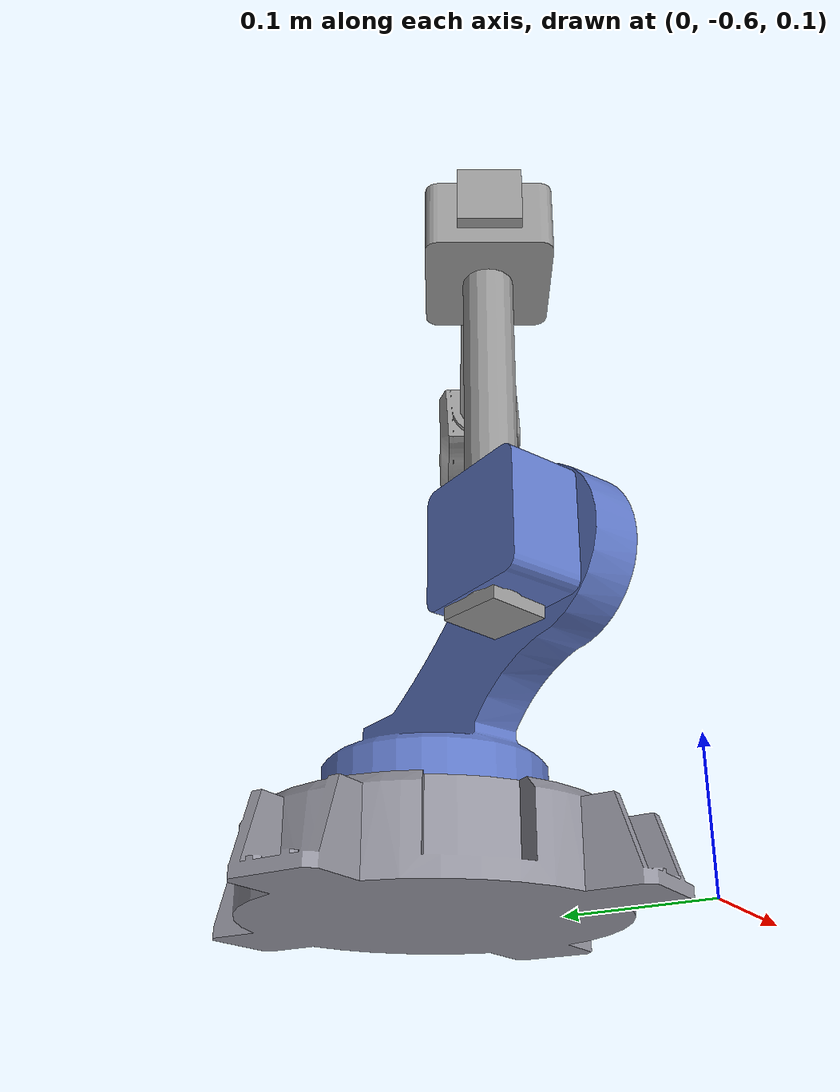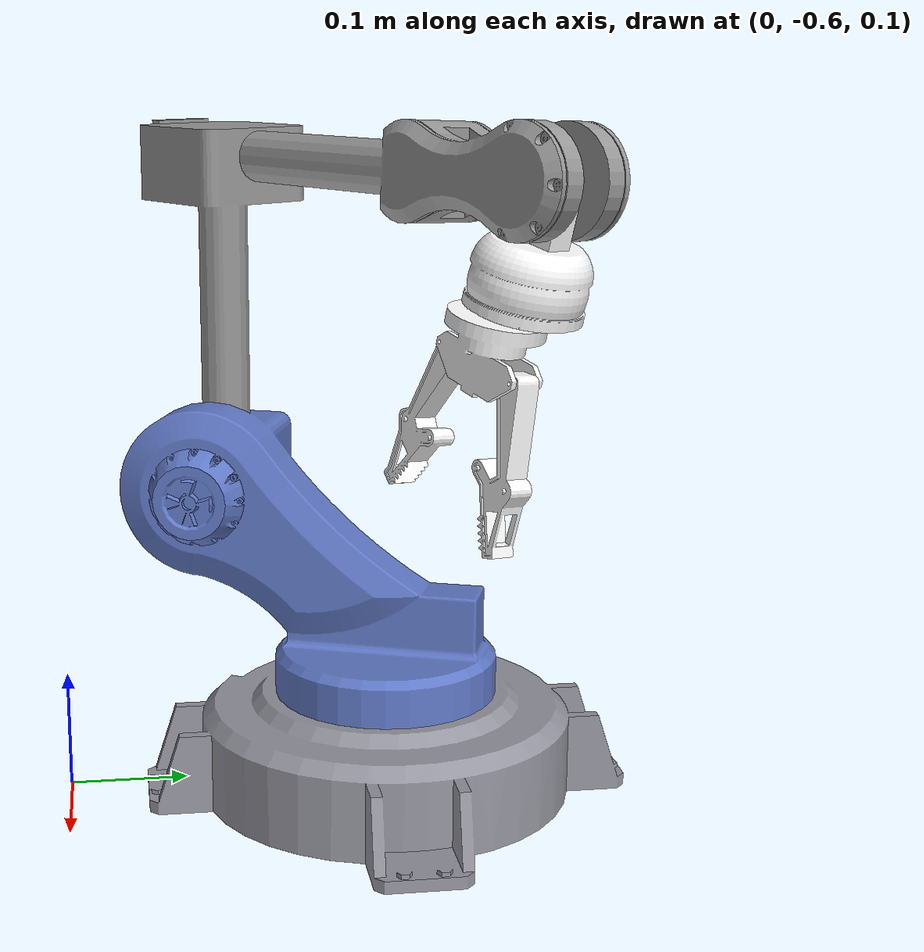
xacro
<?xml version="1.0"?>
<robot xmlns:xacro="http://www.ros.org/wiki/xacro" name="RPP">
    <xacro:arg name="initial_positions_file" default="initial_positions.yaml" />

    <!-- Import RPP urdf file -->
    <xacro:include filename="$(find RPP)/urdf/RPP.urdf" />

    <!-- Import control_xacro -->
    <xacro:include filename="RPP.ros2_control.xacro" />

    <xacro:RPP_ros2_control name="FakeSystem" initial_positions_file="$(arg initial_positions_file)"/>

</robot>

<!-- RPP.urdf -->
<robot
  name="RPP">
  <link
    name="base_link">
    <inertial>
      <origin
        xyz="0.10131 0.16693 0.3385"
        rpy="0.0 0.0 0.0" />
      <mass
        value="5.7724" />
      <inertia
        ixx="0.036499"
        ixy="-4.1268E-05"
        ixz="-0.00079967"
        iyy="0.066642"
        iyz="4.1268E-05"
        izz="0.036499" />
    </inertial>
    <visual>
      <origin
        xyz="0.0 0.0 0.0"
        rpy="0.0 0.0 0.0" />
      <geometry>
        <mesh
          filename="package://RPP/meshes/base_link.STL" />
      </geometry>
      <material
        name="">
        <color
          rgba="0.58824 0.58824 0.63137 1" />
      </material>
    </visual>
    <collision>
      <origin
        xyz="0.0 0.0 0.0"
        rpy="0.0 0.0 0.0" />
      <geometry>
        <mesh
          filename="package://RPP/meshes/base_link.STL" />
      </geometry>
    </collision>
    <gazebo reference="base_link">
  <selfCollide>False</selfCollide>
</gazebo>
  </link>
  <link
    name="LINK1R">
    <inertial>
      <origin
        xyz="-0.073144 0.086256 -0.0058081"
        rpy="0.0 0.0 0.0" />
      <mass
        value="2.7936" />
      <inertia
        ixx="0.012503"
        ixy="0.0090795"
        ixz="0.00047591"
        iyy="0.016889"
        iyz="-0.00041669"
        izz="0.024643" />
    </inertial>
    <visual>
      <origin
        xyz="0.0 0.0 0.0"
        rpy="0.0 0.0 0.0" />
      <geometry>
        <mesh
          filename="package://RPP/meshes/LINK1R.STL" />
      </geometry>
      <material
        name="">
        <color
          rgba="0.38039 0.47843 0.78824 1" />
      </material>
    </visual>
    <collision>
      <origin
        xyz="0.0 0.0 0.0"
        rpy="0.0 0.0 0.0" />
      <geometry>
        <mesh
          filename="package://RPP/meshes/LINK1R.STL" />
      </geometry>
    </collision>
        <gazebo reference="LINK1R">
  <selfCollide>False</selfCollide>
</gazebo>
  </link>
  <joint
    name="LINK1R"
    type="revolute">
    <origin
      xyz="0.099882 -0.33993 0.22222"
      rpy="1.5708 0.0 1.2074" />
    <parent
      link="base_link" />
    <child
      link="LINK1R" />
    <axis
      xyz="0.0 1.0 0.0" />
    <limit
      lower="0.0"
      upper="4.712"
      effort="300.0"
      velocity="3.0" />
      <dynamics damping="0.7"/>
  </joint>
  <link
    name="LINK2P">
    <inertial>
      <origin
        xyz="-6.1062E-15 0.23201 -2.2829E-14"
        rpy="0.0 0.0 0.0" />
      <mass
        value="0.85233" />
      <inertia
        ixx="0.0037084"
        ixy="1.095E-17"
        ixz="4.5845E-05"
        iyy="0.00094122"
        iyz="3.9911E-18"
        izz="0.0036992" />
    </inertial>
    <visual>
      <origin
        xyz="0.0 0.0 0.0"
        rpy="0.0 0.0 0.0" />
      <geometry>
        <mesh
          filename="package://RPP/meshes/LINK2P.STL" />
      </geometry>
      <material
        name="">
        <color
          rgba="0.6 0.6 0.6 1.0" />
      </material>
    </visual>
    <collision>
      <origin
        xyz="0.0 0.0 0.0"
        rpy="0.0 0.0 0.0" />
      <geometry>
        <mesh
          filename="package://RPP/meshes/LINK2P.STL" />
      </geometry>
    </collision>
            <gazebo reference="LINK2P">
  <selfCollide>False</selfCollide>
</gazebo>
  </link>
  <joint
    name="LINK2P"
    type="prismatic">
    <origin
      xyz="-0.15 0.095 -0.057599"
      rpy="0.0 0.098579 0.0" />
    <parent
      link="LINK1R" />
    <child
      link="LINK2P" />
    <axis
      xyz="0.0 1.0 0.0" />
    <limit
      lower="0.0"
      upper="0.15"
      effort="250.0"
      velocity="0.05" />
      <dynamics damping="0.7"/>
  </joint>
  <link
    name="LINK3P">
    <inertial>
      <origin
        xyz="6.7574E-12 0.22103 -4.9665E-12"
        rpy="0.0 0.0 0.0" />
      <mass
        value="0.9893" />
      <inertia
        ixx="0.0049623"
        ixy="-3.5672E-13"
        ixz="-8.8523E-06"
        iyy="0.0006547"
        iyz="2.1748E-13"
        izz="0.0051263" />
    </inertial>
    <visual>
      <origin
        xyz="0.0 0.0 0.0"
        rpy="0.0 0.0 0.0" />
      <geometry>
        <mesh
          filename="package://RPP/meshes/LINK3P.STL" />
      </geometry>
      <material
        name="">
        <color
          rgba="0.6 0.6 0.6 1.0" />
      </material>
    </visual>
    <collision>
      <origin
        xyz="0.0 0.0 0.0"
        rpy="0.0 0.0 0.0" />
      <geometry>
        <mesh
          filename="package://RPP/meshes/LINK3P.STL" />
      </geometry>
    </collision>
            <gazebo reference="LINK3P">
  <selfCollide>False</selfCollide>
</gazebo>
  </link>
  <joint
    name="LINK3P"
    type="prismatic">
    <origin
      xyz="0.0 0.3226 0.0"
      rpy="1.5708 0.83554 0.0" />
    <parent
      link="LINK2P" />
    <child
      link="LINK3P" />
    <axis
      xyz="0.0 1.0 0.0" />
    <limit
      lower="0.0"
      upper="0.15"
      effort="250.0"
      velocity="0.05" />
      <dynamics damping="0.7"/>
  </joint>
  <link
    name="LINK4R">
    <inertial>
      <origin
        xyz="-1.1546E-14 -0.01 0.059477"
        rpy="0.0 0.0 0.0" />
      <mass
        value="0.31757" />
      <inertia
        ixx="0.00032932"
        ixy="0.0"
        ixz="3.422E-19"
        iyy="0.00032643"
        iyz="4.3876E-19"
        izz="0.00022192" />
    </inertial>
    <visual>
      <origin
        xyz="0.0 0.0 0.0"
        rpy="0.0 0.0 0.0" />
      <geometry>
        <mesh
          filename="package://RPP/meshes/LINK4R.STL" />
      </geometry>
      <material
        name="">
        <color
          rgba="1.0 1.0 1.0 1.0" />
      </material>
    </visual>
    <collision>
      <origin
        xyz="0.0 0.0 0.0"
        rpy="0.0 0.0 0.0" />
      <geometry>
        <mesh
          filename="package://RPP/meshes/LINK4R.STL" />
      </geometry>
    </collision>
            <gazebo reference="LINK4R">
  <selfCollide>False</selfCollide>
</gazebo>
  </link>
  <joint
    name="LINK4R"
    type="revolute">
    <origin
      xyz="0.0001142 0.35623 -0.0021209"
      rpy="-0.21403 0.053795 3.1416" />
    <parent
      link="LINK3P" />
    <child
      link="LINK4R" />
    <axis
      xyz="1.0 0.0 0.0" />
    <limit
      lower="0.0"
      upper="3.5"
      effort="300.0"
      velocity="2.0" />
      <dynamics damping="0.7"/>
  </joint>
  <link
    name="LINK5R">
    <inertial>
      <origin
        xyz="0.026611 -0.01 1.0977E-14"
        rpy="0.0 0.0 0.0" />
      <mass
        value="0.076424" />
      <inertia
        ixx="4.0169E-05"
        ixy="2.1176E-21"
        ixz="1.08E-20"
        iyy="3.8067E-05"
        iyz="1.6094E-20"
        izz="3.2004E-05" />
    </inertial>
    <visual>
      <origin
        xyz="0.0 0.0 0.0"
        rpy="0.0 0.0 0.0" />
      <geometry>
        <mesh
          filename="package://RPP/meshes/LINK5R.STL" />
      </geometry>
      <material
        name="">
        <color
          rgba="1.0 1.0 1.0 1.0" />
      </material>
    </visual>
    <collision>
      <origin
        xyz="0.0 0.0 0.0"
        rpy="0.0 0.0 0.0" />
      <geometry>
        <mesh
          filename="package://RPP/meshes/LINK5R.STL" />
      </geometry>
    </collision>
            <gazebo reference="LINK5R">
  <selfCollide>False</selfCollide>
</gazebo>
  </link>
  <joint
    name="LINK5R"
    type="revolute">
    <origin
      xyz="0.0099193 -0.0087325 0.083673"
      rpy="1.6979 -1.5708 0.0" />
    <parent
      link="LINK4R" />
    <child
      link="LINK5R" />
    <axis
      xyz="1.0 0.0 0.0" />
    <limit
      lower="0.0"
      upper="4.712"
      effort="300.0"
      velocity="2.0" />
      <dynamics damping="0.7"/>
  </joint>
  <link
    name="LINK6R">
    <inertial>
      <origin
        xyz="-1.4433E-14 -0.061143 -0.020951"
        rpy="0.0 0.0 0.0" />
      <mass
        value="0.038673" />
      <inertia
        ixx="4.863E-05"
        ixy="-1.5385E-17"
        ixz="-7.1557E-18"
        iyy="7.6525E-06"
        iyz="-1.2515E-05"
        izz="4.2818E-05" />
    </inertial>
    <visual>
      <origin
        xyz="0.0 0.0 0.0"
        rpy="0.0 0.0 0.0" />
      <geometry>
        <mesh
          filename="package://RPP/meshes/LINK6R.STL" />
      </geometry>
      <material
        name="">
        <color
          rgba="1.0 1.0 1.0 1.0" />
      </material>
    </visual>
    <collision>
      <origin
        xyz="0.0 0.0 0.0"
        rpy="0.0 0.0 0.0" />
      <geometry>
        <mesh
          filename="package://RPP/meshes/LINK6R.STL" />
      </geometry>
    </collision>
            <gazebo reference="LINK6R">
  <selfCollide>False</selfCollide>
</gazebo>
  </link>
  <joint
    name="LINK6R"
    type="revolute">
    <origin
      xyz="0.034835 -0.01 -0.035359"
      rpy="2.5651 0.0 -1.5708" />
    <parent
      link="LINK5R" />
    <child
      link="LINK6R" />
    <axis
      xyz="1 0.0 0.0" />
    <limit
      lower="0.0"
      upper="2.79"
      effort="300.0"
      velocity="2.0" />
      <dynamics damping="0.7"/>
  </joint>
  <link
    name="LINK7R">
    <inertial>
      <origin
        xyz="-2.7367E-14 -0.061143 -0.020951"
        rpy="0.0 0.0 0.0" />
      <mass
        value="0.038673" />
      <inertia
        ixx="4.863E-05"
        ixy="-9.5274E-18"
        ixz="-4.4639E-18"
        iyy="7.6525E-06"
        iyz="-1.2515E-05"
        izz="4.2818E-05" />
    </inertial>
    <visual>
      <origin
        xyz="0.0 0.0 0.0"
        rpy="0.0 0.0 0.0" />
      <geometry>
        <mesh
          filename="package://RPP/meshes/LINK7R.STL" />
      </geometry>
      <material
        name="">
        <color
          rgba="1.0 1.0 1.0 1.0" />
      </material>
    </visual>
    <collision>
      <origin
        xyz="0.0 0.0 0.0"
        rpy="0.0 0.0 0.0" />
      <geometry>
        <mesh
          filename="package://RPP/meshes/LINK7R.STL" />
      </geometry>
    </collision>
            <gazebo reference="LINK7R">
  <selfCollide>False</selfCollide>
</gazebo>
  </link>
  <joint
    name="LINK7R"
    type="revolute">
    <origin
      xyz="0.034034 -0.01 0.036855"
      rpy="-0.40661 0.0 1.5708" />
    <parent
      link="LINK5R" />
    <child
      link="LINK7R" />
    <axis
      xyz="1.0 0.0 0.0" />
    <limit
      lower="0.0"
      upper="2.79"
      effort="300.0"
      velocity="2.0" />
      <dynamics damping="0.7"/>
  </joint>
</robot>
